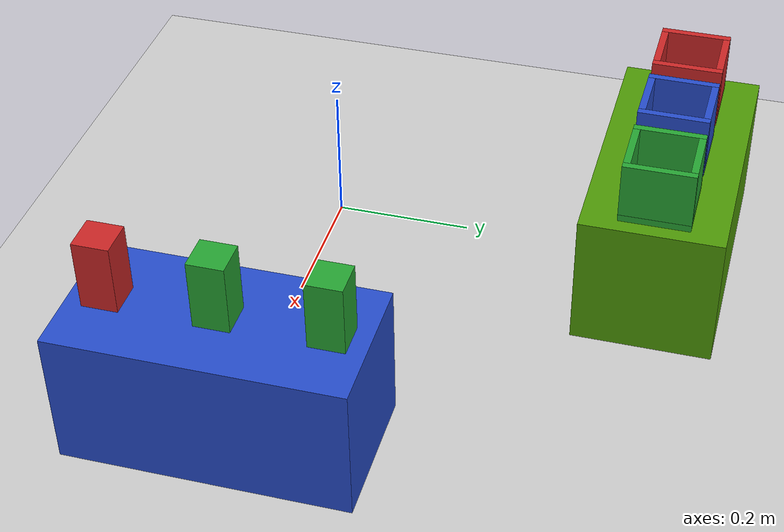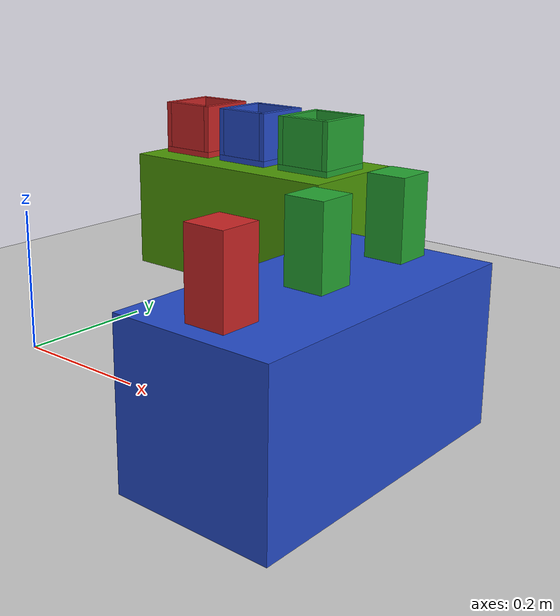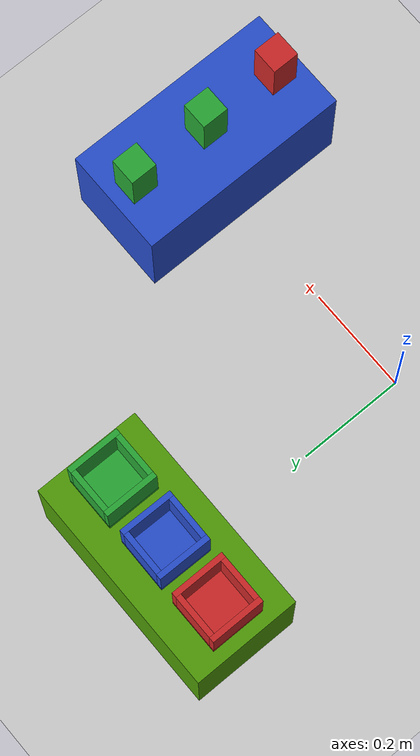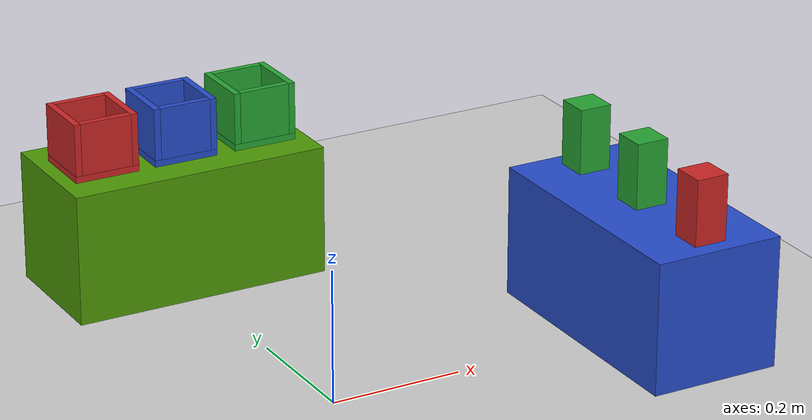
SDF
<sdf version="1.7">
 <world name="default">
  <light name="sun" type="directional">
   <pose>0 0 10 0 -0 0</pose>
   <diffuse>0.8 0.8 0.8 1</diffuse>
   <specular>0.2 0.2 0.2 1</specular>
   <attenuation>
    <range>1000</range>
    <constant>0.9</constant>
    <linear>0.01</linear>
    <quadratic>0.001</quadratic>
   </attenuation>
   <direction>-0.5 0.1 -0.9</direction>
   <spot><inner_angle>0</inner_angle><outer_angle>0</outer_angle><falloff>0</falloff></spot>
  </light>
  <model name="ground_plane">
   <static>1</static>
   <link name="link">
    <collision name="collision">
     <geometry><plane><normal>0 0 1</normal><size>100 100</size></plane></geometry>
     <surface>
      <contact><collide_bitmask>65535</collide_bitmask></contact>
      <friction><ode><mu>100</mu><mu2>50</mu2></ode></friction>
     </surface>
    </collision>
    <visual name="visual">
     <cast_shadows>0</cast_shadows>
     <geometry><plane><normal>0 0 1</normal><size>100 100</size></plane></geometry>
     <material>
      <script><uri>file://media/materials/scripts/gazebo.material</uri><name>Gazebo/Grey</name></script>
     </material>
    </visual>
    <self_collide>1</self_collide>
   </link>
  </model>
  <gravity>0 0 -9.8</gravity>
  <magnetic_field>6e-06 2.3e-05 -4.2e-05</magnetic_field>
  <atmosphere type="adiabatic"/>
  <physics type="ode">
   <max_step_size>0.001</max_step_size>
   <real_time_factor>1</real_time_factor>
   <real_time_update_rate>1000</real_time_update_rate>
  </physics>
  <scene><ambient>0.4 0.4 0.4 1</ambient><background>0.7 0.7 0.7 1</background><shadows>1</shadows></scene>
  <spherical_coordinates>
   <surface_model>EARTH_WGS84</surface_model>
   <latitude_deg>0</latitude_deg>
   <longitude_deg>0</longitude_deg>
   <elevation>0</elevation>
   <heading_deg>0</heading_deg>
  </spherical_coordinates>
  <model name="table">
   <link name="link_2">
    <inertial>
     <mass>1</mass>
     <inertia>
      <ixx>0.166667</ixx>
      <ixy>0</ixy>
      <ixz>0</ixz>
      <iyy>0.166667</iyy>
      <iyz>0</iyz>
      <izz>0.166667</izz>
     </inertia>
    </inertial>
    <self_collide>1</self_collide>
    <visual name="visual">
     <geometry><box><size>0.2 0.4 0.2</size></box></geometry>
     <material>
      <lighting>1</lighting>
      <script><uri>file://media/materials/scripts/gazebo.material</uri><name>Gazebo/Blue</name></script>
      <shader type="pixel"><normal_map>__default__</normal_map></shader>
      <ambient>0.306 0.604 0.024 1</ambient>
      <diffuse>0.7 0.7 0.7 1</diffuse>
      <specular>0.01 0.01 0.01 1</specular>
      <emissive>0 0 0 1</emissive>
     </material>
    </visual>
    <collision name="collision">
     <geometry><box><size>0.2 0.4 0.2</size></box></geometry>
     <surface>
      <friction>
       <ode><mu>1</mu><mu2>1</mu2><fdir1>0 0 0</fdir1><slip1>0</slip1><slip2>0</slip2></ode>
       <torsional>
        <coefficient>1</coefficient>
        <patch_radius>0</patch_radius>
        <surface_radius>0</surface_radius>
        <use_patch_radius>1</use_patch_radius>
        <ode><slip>0</slip></ode>
       </torsional>
      </friction>
      <bounce><restitution_coefficient>0</restitution_coefficient><threshold>1e+06</threshold></bounce>
      <contact>
       <collide_without_contact>0</collide_without_contact>
       <collide_without_contact_bitmask>1</collide_without_contact_bitmask>
       <collide_bitmask>1</collide_bitmask>
       <ode>
        <soft_cfm>0</soft_cfm>
        <soft_erp>0.2</soft_erp>
        <kp>1e+13</kp>
        <kd>1</kd>
        <max_vel>0.01</max_vel>
        <min_depth>0</min_depth>
       </ode>
       <bullet>
        <split_impulse>1</split_impulse>
        <split_impulse_penetration_threshold>-0.01</split_impulse_penetration_threshold>
        <soft_cfm>0</soft_cfm>
        <soft_erp>0.2</soft_erp>
        <kp>1e+13</kp>
        <kd>1</kd>
       </bullet>
      </contact>
     </surface>
    </collision>
   </link>
   <static>0</static>
   <pose>0.5 0 0.1 0 -0 4.9e-05</pose>
  </model>
  <model name="red block">
   <link name="link_0">
    <inertial>
     <mass>0.1</mass>
     <inertia>
      <ixx>0.00416667</ixx>
      <ixy>0</ixy>
      <ixz>0</ixz>
      <iyy>0.00416667</iyy>
      <iyz>0</iyz>
      <izz>0.00416667</izz>
     </inertia>
    </inertial>
    <self_collide>1</self_collide>
    <visual name="visual">
     <geometry><box><size>0.05 0.05 0.1</size></box></geometry>
     <material>
      <lighting>1</lighting>
      <script><uri>file://media/materials/scripts/gazebo.material</uri><name>Gazebo/Red</name></script>
      <shader type="pixel"><normal_map>__default__</normal_map></shader>
      <ambient>1 0 0 1</ambient>
      <diffuse>0.7 0.7 0.7 1</diffuse>
      <specular>0.01 0.01 0.01 1</specular>
      <emissive>0 0 0 1</emissive>
     </material>
    </visual>
    <collision name="collision">
     <geometry><box><size>0.05 0.05 0.1</size></box></geometry>
     <surface>
      <friction>
       <ode><mu>100</mu><mu2>100</mu2><fdir1>0 0 0</fdir1><slip1>0</slip1><slip2>0</slip2></ode>
       <torsional>
        <coefficient>1</coefficient>
        <patch_radius>0</patch_radius>
        <surface_radius>0</surface_radius>
        <use_patch_radius>1</use_patch_radius>
        <ode><slip>0</slip></ode>
       </torsional>
      </friction>
      <bounce><restitution_coefficient>0</restitution_coefficient><threshold>1e+06</threshold></bounce>
      <contact><ode><soft_cfm>1e-06</soft_cfm><soft_erp>0.2</soft_erp><kp>1e+06</kp><kd>1</kd></ode></contact>
     </surface>
    </collision>
   </link>
   <static>0</static>
   <pose>0.500011 -0.149985 0.25 -3e-06 -1e-05 -6e-06</pose>
  </model>
  <model name="green block">
   <link name="link_0">
    <inertial>
     <mass>0.1</mass>
     <inertia>
      <ixx>0.00416667</ixx>
      <ixy>0</ixy>
      <ixz>0</ixz>
      <iyy>0.00416667</iyy>
      <iyz>0</iyz>
      <izz>0.00416667</izz>
     </inertia>
    </inertial>
    <self_collide>1</self_collide>
    <visual name="visual">
     <geometry><box><size>0.05 0.05 0.1</size></box></geometry>
     <material>
      <lighting>1</lighting>
      <script><uri>file://media/materials/scripts/gazebo.material</uri><name>Gazebo/Green</name></script>
      <shader type="pixel"><normal_map>__default__</normal_map></shader>
      <ambient>0 1 0 1</ambient>
      <diffuse>0 1 0 1</diffuse>
      <specular>0.01 0.01 0.01 1</specular>
      <emissive>0 0 0 1</emissive>
     </material>
    </visual>
    <collision name="collision">
     <geometry><box><size>0.05 0.05 0.1</size></box></geometry>
     <surface>
      <friction>
       <ode><mu>100</mu><mu2>100</mu2><fdir1>0 0 0</fdir1><slip1>0</slip1><slip2>0</slip2></ode>
       <torsional>
        <coefficient>1</coefficient>
        <patch_radius>0</patch_radius>
        <surface_radius>0</surface_radius>
        <use_patch_radius>1</use_patch_radius>
        <ode><slip>0</slip></ode>
       </torsional>
      </friction>
      <bounce><restitution_coefficient>0</restitution_coefficient><threshold>1e+06</threshold></bounce>
      <contact><ode><soft_cfm>1e-06</soft_cfm><soft_erp>0.2</soft_erp><kp>1e+06</kp><kd>1</kd></ode></contact>
     </surface>
    </collision>
   </link>
   <static>0</static>
   <pose>0.500002 9e-06 0.249999 -3e-06 -7e-06 3e-05</pose>
  </model>
  <model name="blue block">
   <link name="link_0">
    <inertial>
     <mass>0.1</mass>
     <inertia>
      <ixx>0.00416667</ixx>
      <ixy>0</ixy>
      <ixz>0</ixz>
      <iyy>0.00416667</iyy>
      <iyz>0</iyz>
      <izz>0.00416667</izz>
     </inertia>
    </inertial>
    <self_collide>1</self_collide>
    <visual name="visual">
     <geometry><box><size>0.05 0.05 0.1</size></box></geometry>
     <material>
      <lighting>1</lighting>
      <script><uri>file://media/materials/scripts/gazebo.material</uri><name>Gazebo/Green</name></script>
      <shader type="pixel"><normal_map>__default__</normal_map></shader>
      <ambient>0 0 1 1</ambient>
      <diffuse>0 0 1 0.7</diffuse>
      <specular>0.01 0.01 0.01 1</specular>
      <emissive>0 0 0 1</emissive>
     </material>
    </visual>
    <collision name="collision">
     <geometry><box><size>0.05 0.05 0.1</size></box></geometry>
     <surface>
      <friction>
       <ode><mu>100</mu><mu2>100</mu2><fdir1>0 0 0</fdir1><slip1>0</slip1><slip2>0</slip2></ode>
       <torsional>
        <coefficient>1</coefficient>
        <patch_radius>0</patch_radius>
        <surface_radius>0</surface_radius>
        <use_patch_radius>1</use_patch_radius>
        <ode><slip>0</slip></ode>
       </torsional>
      </friction>
      <bounce><restitution_coefficient>0</restitution_coefficient><threshold>1e+06</threshold></bounce>
      <contact><ode><soft_cfm>1e-06</soft_cfm><soft_erp>0.2</soft_erp><kp>1e+06</kp><kd>1</kd></ode></contact>
     </surface>
    </collision>
   </link>
   <static>0</static>
   <pose>0.499993 0.149998 0.249999 -4e-06 -1.4e-05 0.000136</pose>
  </model>
  <model name="table_0">
   <link name="link_2">
    <inertial>
     <mass>1</mass>
     <inertia>
      <ixx>0.166667</ixx>
      <ixy>0</ixy>
      <ixz>0</ixz>
      <iyy>0.166667</iyy>
      <iyz>0</iyz>
      <izz>0.166667</izz>
     </inertia>
    </inertial>
    <self_collide>1</self_collide>
    <visual name="visual">
     <geometry><box><size>0.2 0.4 0.2</size></box></geometry>
     <material>
      <lighting>1</lighting>
      <script><uri>file://media/materials/scripts/gazebo.material</uri><name>Gazebo/Grey</name></script>
      <shader type="pixel"><normal_map>__default__</normal_map></shader>
      <ambient>0.306 0.604 0.024 1</ambient>
      <diffuse>0.7 0.7 0.7 1</diffuse>
      <specular>0.01 0.01 0.01 1</specular>
      <emissive>0 0 0 1</emissive>
     </material>
    </visual>
    <collision name="collision">
     <geometry><box><size>0.2 0.4 0.2</size></box></geometry>
     <surface>
      <friction>
       <ode><mu>1</mu><mu2>1</mu2><fdir1>0 0 0</fdir1><slip1>0</slip1><slip2>0</slip2></ode>
       <torsional>
        <coefficient>1</coefficient>
        <patch_radius>0</patch_radius>
        <surface_radius>0</surface_radius>
        <use_patch_radius>1</use_patch_radius>
        <ode><slip>0</slip></ode>
       </torsional>
      </friction>
      <bounce><restitution_coefficient>0</restitution_coefficient><threshold>1e+06</threshold></bounce>
      <contact>
       <collide_without_contact>0</collide_without_contact>
       <collide_without_contact_bitmask>1</collide_without_contact_bitmask>
       <collide_bitmask>1</collide_bitmask>
       <ode>
        <soft_cfm>0</soft_cfm>
        <soft_erp>0.2</soft_erp>
        <kp>1e+13</kp>
        <kd>1</kd>
        <max_vel>0.01</max_vel>
        <min_depth>0</min_depth>
       </ode>
       <bullet>
        <split_impulse>1</split_impulse>
        <split_impulse_penetration_threshold>-0.01</split_impulse_penetration_threshold>
        <soft_cfm>0</soft_cfm>
        <soft_erp>0.2</soft_erp>
        <kp>1e+13</kp>
        <kd>1</kd>
       </bullet>
      </contact>
     </surface>
    </collision>
   </link>
   <static>0</static>
   <pose>0.0002 0.499876 0.099978 -8.4e-05 -2.7e-05 1.57003</pose>
  </model>
  <model name="bin_blue">
   <pose>-0.000539 0.499622 0.204977 -5.9e-05 6e-06 -0.009944</pose>
   <static>0</static>
   <link name="link_0">
    <visual name="visual">
     <geometry><box><size>0.1 0.1 0.01</size></box></geometry>
     <material>
      <script><uri>file://media/materials/scripts/gazebo.material</uri><name>Gazebo/Blue</name></script>
     </material>
    </visual>
    <collision name="collision"><geometry><box><size>0.1 0.1 0.01</size></box></geometry></collision>
    <inertial>
     <inertia><ixx>1</ixx><ixy>0</ixy><ixz>0</ixz><iyy>1</iyy><iyz>0</iyz><izz>1</izz></inertia>
     <mass>1</mass>
    </inertial>
   </link>
   <link name="link_1">
    <pose>-0.045 0 0.045 0 -0 0</pose>
    <visual name="visual">
     <geometry><box><size>0.01 0.1 0.08</size></box></geometry>
     <material>
      <script><uri>file://media/materials/scripts/gazebo.material</uri><name>Gazebo/Blue</name></script>
     </material>
    </visual>
    <collision name="collision"><geometry><box><size>0.01 0.1 0.08</size></box></geometry></collision>
    <inertial>
     <inertia><ixx>1</ixx><ixy>0</ixy><ixz>0</ixz><iyy>1</iyy><iyz>0</iyz><izz>1</izz></inertia>
     <mass>1</mass>
    </inertial>
   </link>
   <link name="link_1_clone">
    <pose>0.045 0 0.045 0 -0 0</pose>
    <visual name="visual">
     <geometry><box><size>0.01 0.1 0.08</size></box></geometry>
     <material>
      <script><uri>file://media/materials/scripts/gazebo.material</uri><name>Gazebo/Blue</name></script>
     </material>
    </visual>
    <collision name="collision"><geometry><box><size>0.01 0.1 0.08</size></box></geometry></collision>
    <inertial>
     <inertia><ixx>1</ixx><ixy>0</ixy><ixz>0</ixz><iyy>1</iyy><iyz>0</iyz><izz>1</izz></inertia>
     <mass>1</mass>
    </inertial>
   </link>
   <link name="link_2">
    <pose>0 -0.045 0.045 0 -0 0</pose>
    <visual name="visual">
     <geometry><box><size>0.08 0.01 0.08</size></box></geometry>
     <material>
      <script><uri>file://media/materials/scripts/gazebo.material</uri><name>Gazebo/Blue</name></script>
     </material>
    </visual>
    <collision name="collision"><geometry><box><size>0.08 0.01 0.08</size></box></geometry></collision>
    <inertial>
     <inertia><ixx>1</ixx><ixy>0</ixy><ixz>0</ixz><iyy>1</iyy><iyz>0</iyz><izz>1</izz></inertia>
     <mass>1</mass>
    </inertial>
   </link>
   <link name="link_2_clone">
    <pose>0 0.045 0.045 0 -0 0</pose>
    <visual name="visual">
     <geometry><box><size>0.08 0.01 0.08</size></box></geometry>
     <material>
      <script><uri>file://media/materials/scripts/gazebo.material</uri><name>Gazebo/Blue</name></script>
     </material>
    </visual>
    <collision name="collision"><geometry><box><size>0.08 0.01 0.08</size></box></geometry></collision>
    <inertial>
     <inertia><ixx>1</ixx><ixy>0</ixy><ixz>0</ixz><iyy>1</iyy><iyz>0</iyz><izz>1</izz></inertia>
     <mass>1</mass>
    </inertial>
   </link>
  </model>
  <model name="bin_green">
   <pose>0.12886 0.500009 0.204993 2.7e-05 -5e-06 0.000673</pose>
   <static>0</static>
   <link name="link_0">
    <visual name="visual">
     <geometry><box><size>0.1 0.1 0.01</size></box></geometry>
     <material>
      <script><uri>file://media/materials/scripts/gazebo.material</uri><name>Gazebo/Green</name></script>
     </material>
    </visual>
    <collision name="collision"><geometry><box><size>0.1 0.1 0.01</size></box></geometry></collision>
    <inertial>
     <inertia><ixx>1</ixx><ixy>0</ixy><ixz>0</ixz><iyy>1</iyy><iyz>0</iyz><izz>1</izz></inertia>
     <mass>1</mass>
    </inertial>
   </link>
   <link name="link_1">
    <pose>-0.045 0 0.045 0 -0 0</pose>
    <visual name="visual">
     <geometry><box><size>0.01 0.1 0.08</size></box></geometry>
     <material>
      <script><uri>file://media/materials/scripts/gazebo.material</uri><name>Gazebo/Green</name></script>
     </material>
    </visual>
    <collision name="collision"><geometry><box><size>0.01 0.1 0.08</size></box></geometry></collision>
    <inertial>
     <inertia><ixx>1</ixx><ixy>0</ixy><ixz>0</ixz><iyy>1</iyy><iyz>0</iyz><izz>1</izz></inertia>
     <mass>1</mass>
    </inertial>
   </link>
   <link name="link_1_clone">
    <pose>0.045 0 0.045 0 -0 0</pose>
    <visual name="visual">
     <geometry><box><size>0.01 0.1 0.08</size></box></geometry>
     <material>
      <script><uri>file://media/materials/scripts/gazebo.material</uri><name>Gazebo/Green</name></script>
     </material>
    </visual>
    <collision name="collision"><geometry><box><size>0.01 0.1 0.08</size></box></geometry></collision>
    <inertial>
     <inertia><ixx>1</ixx><ixy>0</ixy><ixz>0</ixz><iyy>1</iyy><iyz>0</iyz><izz>1</izz></inertia>
     <mass>1</mass>
    </inertial>
   </link>
   <link name="link_2">
    <pose>0 -0.045 0.045 0 -0 0</pose>
    <visual name="visual">
     <geometry><box><size>0.08 0.01 0.08</size></box></geometry>
     <material>
      <script><uri>file://media/materials/scripts/gazebo.material</uri><name>Gazebo/Green</name></script>
     </material>
    </visual>
    <collision name="collision"><geometry><box><size>0.08 0.01 0.08</size></box></geometry></collision>
    <inertial>
     <inertia><ixx>1</ixx><ixy>0</ixy><ixz>0</ixz><iyy>1</iyy><iyz>0</iyz><izz>1</izz></inertia>
     <mass>1</mass>
    </inertial>
   </link>
   <link name="link_2_clone">
    <pose>0 0.045 0.045 0 -0 0</pose>
    <visual name="visual">
     <geometry><box><size>0.08 0.01 0.08</size></box></geometry>
     <material>
      <script><uri>file://media/materials/scripts/gazebo.material</uri><name>Gazebo/Green</name></script>
     </material>
    </visual>
    <collision name="collision"><geometry><box><size>0.08 0.01 0.08</size></box></geometry></collision>
    <inertial>
     <inertia><ixx>1</ixx><ixy>0</ixy><ixz>0</ixz><iyy>1</iyy><iyz>0</iyz><izz>1</izz></inertia>
     <mass>1</mass>
    </inertial>
   </link>
  </model>
  <model name="bin_red">
   <pose>-0.127411 0.499818 0.204981 -0.000125 4.4e-05 -0.00211</pose>
   <static>0</static>
   <link name="link_0">
    <visual name="visual">
     <geometry><box><size>0.1 0.1 0.01</size></box></geometry>
     <material>
      <script><uri>file://media/materials/scripts/gazebo.material</uri><name>Gazebo/Red</name></script>
     </material>
    </visual>
    <collision name="collision"><geometry><box><size>0.1 0.1 0.01</size></box></geometry></collision>
    <inertial>
     <inertia><ixx>1</ixx><ixy>0</ixy><ixz>0</ixz><iyy>1</iyy><iyz>0</iyz><izz>1</izz></inertia>
     <mass>1</mass>
    </inertial>
   </link>
   <link name="link_1">
    <pose>-0.045 0 0.045 0 -0 0</pose>
    <visual name="visual">
     <geometry><box><size>0.01 0.1 0.08</size></box></geometry>
     <material>
      <script><uri>file://media/materials/scripts/gazebo.material</uri><name>Gazebo/Red</name></script>
     </material>
    </visual>
    <collision name="collision"><geometry><box><size>0.01 0.1 0.08</size></box></geometry></collision>
    <inertial>
     <inertia><ixx>1</ixx><ixy>0</ixy><ixz>0</ixz><iyy>1</iyy><iyz>0</iyz><izz>1</izz></inertia>
     <mass>1</mass>
    </inertial>
   </link>
   <link name="link_1_clone">
    <pose>0.045 0 0.045 0 -0 0</pose>
    <visual name="visual">
     <geometry><box><size>0.01 0.1 0.08</size></box></geometry>
     <material>
      <script><uri>file://media/materials/scripts/gazebo.material</uri><name>Gazebo/Red</name></script>
     </material>
    </visual>
    <collision name="collision"><geometry><box><size>0.01 0.1 0.08</size></box></geometry></collision>
    <inertial>
     <inertia><ixx>1</ixx><ixy>0</ixy><ixz>0</ixz><iyy>1</iyy><iyz>0</iyz><izz>1</izz></inertia>
     <mass>1</mass>
    </inertial>
   </link>
   <link name="link_2">
    <pose>0 -0.045 0.045 0 -0 0</pose>
    <visual name="visual">
     <geometry><box><size>0.08 0.01 0.08</size></box></geometry>
     <material>
      <script><uri>file://media/materials/scripts/gazebo.material</uri><name>Gazebo/Red</name></script>
     </material>
    </visual>
    <collision name="collision"><geometry><box><size>0.08 0.01 0.08</size></box></geometry></collision>
    <inertial>
     <inertia><ixx>1</ixx><ixy>0</ixy><ixz>0</ixz><iyy>1</iyy><iyz>0</iyz><izz>1</izz></inertia>
     <mass>1</mass>
    </inertial>
   </link>
   <link name="link_2_clone">
    <pose>0 0.045 0.045 0 -0 0</pose>
    <visual name="visual">
     <geometry><box><size>0.08 0.01 0.08</size></box></geometry>
     <material>
      <script><uri>file://media/materials/scripts/gazebo.material</uri><name>Gazebo/Red</name></script>
     </material>
    </visual>
    <collision name="collision"><geometry><box><size>0.08 0.01 0.08</size></box></geometry></collision>
    <inertial>
     <inertia><ixx>1</ixx><ixy>0</ixy><ixz>0</ixz><iyy>1</iyy><iyz>0</iyz><izz>1</izz></inertia>
     <mass>1</mass>
    </inertial>
   </link>
  </model>
 </world>
</sdf>
